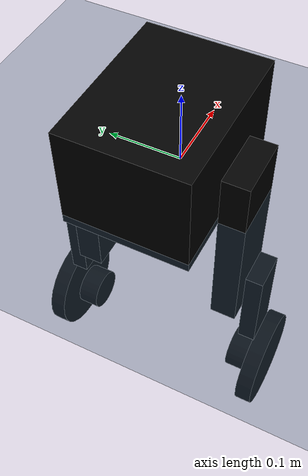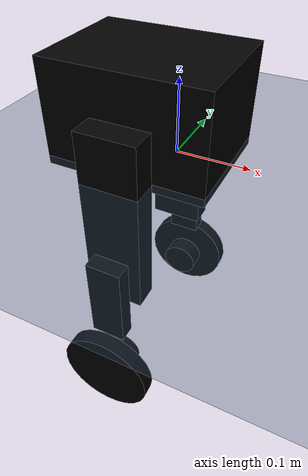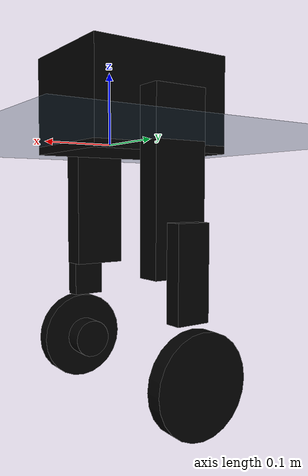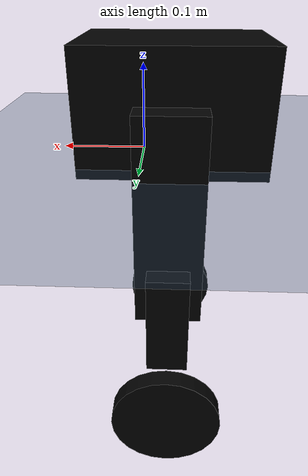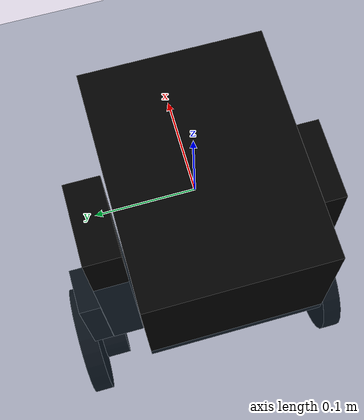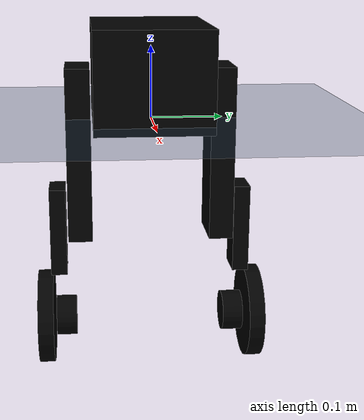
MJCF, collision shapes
<mujoco model="pineapple_6dof_scene">
  <include file="pineapple_6dof.xml"/>

  <statistic center="0 0 0.1" extent="0.8"/>

  <visual>
    <headlight diffuse="0.6 0.6 0.6" ambient="0.3 0.3 0.3" specular="0 0 0"/>
    <rgba haze="0.15 0.25 0.35 1"/>
    <global azimuth="-130" elevation="-20"/>
  </visual>

  <asset>
    <texture type="skybox" builtin="gradient" rgb1="0.3 0.5 0.7" rgb2="0 0 0" width="512" height="3072"/>
    <texture type="2d" name="groundplane" builtin="checker" mark="edge" rgb1="0.2 0.3 0.4" rgb2="0.1 0.2 0.3"
      markrgb="0.8 0.8 0.8" width="300" height="300"/>
    <material name="groundplane" texture="groundplane" texuniform="true" texrepeat="5 5" reflectance="0.2"/>
  </asset>

  <worldbody>
    <light directional="true" diffuse=".8 .8 .8" pos="0 0 10" dir="0 0 -10"/>
    <geom name="floor" size="0 0 0.05" type="plane" material="groundplane" priority="1" condim="6"
            friction="1 0.02 0.01"/>
  </worldbody>
</mujoco>

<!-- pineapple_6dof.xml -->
<mujoco model="pineapple">
  <compiler angle="radian" meshdir="../meshes_6dof"/>
  <option cone="elliptic" impratio="100"/>
  <option gravity='0 0 -9.81' iterations='50' solver='Newton' timestep='0.002'/>

  <asset>
    <mesh name="base_link" file="base_link.STL"/>
    <mesh name="R_thigh_link" file="R_thigh_link.STL"/>
    <mesh name="R_calf_link" file="R_calf_link.STL"/>
    <mesh name="R_wheel_link" file="R_wheel_link.STL"/>
    <mesh name="L_thigh_link" file="L_thigh_link.STL"/>
    <mesh name="L_calf_link" file="L_calf_link.STL"/>
    <mesh name="L_wheel_link" file="L_wheel_link.STL"/>
    <mesh name="battery" file="battery.STL"/>
  </asset>

  <worldbody>
    <body name="base_link" pos="0 0 0" >
        <inertial pos="-0.03497 7.1375E-05 0.055169" quat="1 0 0 0" mass="2.327" diaginertia="0.010702 0.010715 0.014614" />
        <freejoint />
        <site name="imu" pos="0 0 0" size="0.01" rgba="0 0 1 1"/>
        <geom type="mesh" contype="0" conaffinity="0" group="1" density="0" rgba="0.156863 0.156863 0.156863 1" mesh="base_link"/>
        <geom size="0.1085 0.082 0.07" pos="-0.036 0 0.058" type="box" rgba="0 0 0 0"/>
        <body name="battery" pos="0 0 0">
          <inertial pos="-0.0775 -1.96e-05 0.055503" quat="1 0 0 0" mass="0.68" diaginertia="0.001214 0.000415 0.000978" />
          <geom type="mesh" contype="0" conaffinity="0" group="1" density="0" rgba="0.247059 0.247059 0.247059 1" mesh="battery"/>
        </body>
        <body name="R_thigh_link" pos="-0.0341458 -0.0849999 0.0485">
          <inertial pos="-0.00116866 -0.0168014 -0.141575" quat="0.694626 -0.0171555 0.0223094 0.71882" mass="0.79" diaginertia="0.00401836 0.00364268 0.00052296"/>
          <joint name="R_thigh_joint" pos="0 0 0" axis="0 1 0" range="0 2.1" actuatorfrcrange="-23.7 23.7" damping="0.1" armature="0.01" stiffness="0" frictionloss="0.2"/>
          <geom type="mesh" contype="0" conaffinity="0" group="1" density="0" rgba="0.145098 0.145098 0.145098 1" mesh="R_thigh_link"/>
          <geom size="0.04 0.0175 0.125" pos="0 -0.0175 -0.104" type="box" rgba="0 0 0 0"/>
          <body name="R_calf_link" pos="6.23304e-05 -0.0383 -0.18">
            <inertial pos="-0.0001318 -0.0152534 -0.11185" quat="0.706227 -0.0114844 0.0119533 0.707791" mass="0.624823" diaginertia="0.00520652 0.00517913 0.000193779"/>
            <joint name="R_calf_joint" pos="0 0 0" axis="0 1 0" range="-3 0" actuatorfrcrange="-23.7 23.7" damping="0.1" armature="0.01" stiffness="0" frictionloss="0.2"/>
            <geom type="mesh" contype="0" conaffinity="0" group="1" density="0" rgba="0.145098 0.145098 0.145098 1" mesh="R_calf_link"/>
            <geom size="0.025 0.0118 0.065" pos="0 -0.0118 -0.04" type="box" rgba="0 0 0 0"/>
            <geom size="0.03 0.015" pos="0 -0.00255 -0.18" quat="0.707388 0.706825 0 0" type="cylinder" rgba="0 0 0 0"/>
            <body name="R_wheel_link" pos="0 -0.04255 -0.18">
              <inertial pos="-6.2331e-05 0.00898741 -1.05886e-08" quat="0.707107 0 0 0.707107" mass="0.3" diaginertia="0.000934 0.00048 0.00048"/>
              <joint name="R_wheel_joint" pos="0 0 0" axis="0 1 0" actuatorfrcrange="-3.69 3.69" damping="0.003" armature="0.005" stiffness="0"/>
              <geom type="mesh" contype="0" conaffinity="0" group="1" density="0" rgba="0.152941 0.152941 0.152941 1" mesh="R_wheel_link"/>
              <geom size="0.07 0.0115" pos="0 0.01 0" quat="0.707388 0.706825 0 0" type="cylinder" rgba="0 0 0 0" />
            </body>
          </body>
        </body>
        <body name="L_thigh_link" pos="-0.0341458 0.0850001 0.0485">
          <inertial pos="-0.00111964 0.0168014 -0.141576" quat="0.71882 0.0223094 -0.0171555 0.694626" mass="0.79" diaginertia="0.00401836 0.00364268 0.00052296"/>
          <joint name="L_thigh_joint" pos="0 0 0" axis="0 1 0" range="0 2.1" actuatorfrcrange="-23.7 23.7" damping="0.1" armature="0.01" stiffness="0" frictionloss="0.2"/>
          <geom type="mesh" contype="0" conaffinity="0" group="1" density="0" rgba="0.145098 0.145098 0.145098 1" mesh="L_thigh_link"/>
          <geom size="0.04 0.0175 0.125" pos="0 0.0175 -0.104" type="box" rgba="0 0 0 0"/>
          <body name="L_calf_link" pos="6.23304e-05 0.0383 -0.18">
            <inertial pos="-9.65115e-05 0.0152581 -0.111914" quat="0.707119 0.0120204 -0.0115411 0.706899" mass="0.624823" diaginertia="0.00521172 0.00518528 0.000193726"/>
            <joint name="L_calf_joint" pos="0 0 0" axis="0 1 0" range="-2.7 0" actuatorfrcrange="-23.7 23.7" damping="0.1" armature="0.01" stiffness="0" frictionloss="0.2"/>
            <geom type="mesh" contype="0" conaffinity="0" group="1" density="0" rgba="0.145098 0.145098 0.145098 1" mesh="L_calf_link"/>
            <geom size="0.025 0.0118 0.065" pos="0 0.0118 -0.04" type="box" rgba="0 0 0 0"/>
            <geom size="0.03 0.015" pos="0 0.00255 -0.18" quat="0.707388 -0.706825 0 0" type="cylinder" rgba="0 0 0 0"/>
            <body name="L_wheel_link" pos="0 0.04255 -0.18">
              <inertial pos="-8.11407e-10 -0.00898741 2.81785e-10" quat="0.707107 0 0 0.707107" mass="0.3" diaginertia="0.000934 0.00048 0.00048"/>
              <joint name="L_wheel_joint" pos="0 0 0" axis="0 1 0" actuatorfrcrange="-3.69 3.69" damping="0.003" armature="0.005" stiffness="0"/>
              <geom type="mesh" contype="0" conaffinity="0" group="1" density="0" rgba="0.152941 0.152941 0.152941 1" mesh="L_wheel_link"/>
              <geom size="0.07 0.0115" pos="0 -0.01 0" quat="0.707388 -0.706825 0 0" type="cylinder" rgba="0 0 0 0" />
            </body>
          </body>
        </body>
      </body>
  </worldbody>

  <actuator>
    <!-- Leg Joints -->
    <motor name="R_thigh" joint="R_thigh_joint" ctrllimited="true" ctrlrange="-1000 1000"  gear="1"/>
    <motor name="R_calf" joint="R_calf_joint" ctrllimited="true" ctrlrange="-1000 1000"  gear="1"/>
    <motor name="R_wheel" joint="R_wheel_joint" ctrllimited="true" ctrlrange="-1000 1000"  gear="1"/>
    <motor name="L_thigh" joint="L_thigh_joint" ctrllimited="true" ctrlrange="-1000 1000"  gear="1"/>
    <motor name="L_calf" joint="L_calf_joint" ctrllimited="true" ctrlrange="-1000 1000"  gear="1"/>
    <motor name="L_wheel" joint="L_wheel_joint" ctrllimited="true" ctrlrange="-1000 1000"  gear="1"/>
  </actuator>

  <sensor>
    <framepos name="base_pos" objtype="body" objname="base_link" />
    <framequat name="orientation" objtype="site" objname="imu" />

    <jointpos name="R_thigh_joint_p" joint="R_thigh_joint" />
    <jointpos name="R_calf_joint_p" joint="R_calf_joint" />
    <jointpos name="R_wheel_joint_p" joint="R_wheel_joint" />

    <jointpos name="L_thigh_joint_p" joint="L_thigh_joint" />
    <jointpos name="L_calf_joint_p" joint="L_calf_joint" />
    <jointpos name="L_wheel_joint_p" joint="L_wheel_joint" />

    <subtreelinvel name="base_lin_vel" body="base_link" />
    <gyro name="base_ang_vel" site="imu" />

    <jointvel name="R_thigh_joint_v" joint="R_thigh_joint" />
    <jointvel name="R_calf_joint_v" joint="R_calf_joint" />
    <jointvel name="R_wheel_joint_v" joint="R_wheel_joint" />

    <jointvel name="L_thigh_joint_v" joint="L_thigh_joint" />
    <jointvel name="L_calf_joint_v" joint="L_calf_joint" />
    <jointvel name="L_wheel_joint_v" joint="L_wheel_joint" />
  </sensor>
</mujoco>
